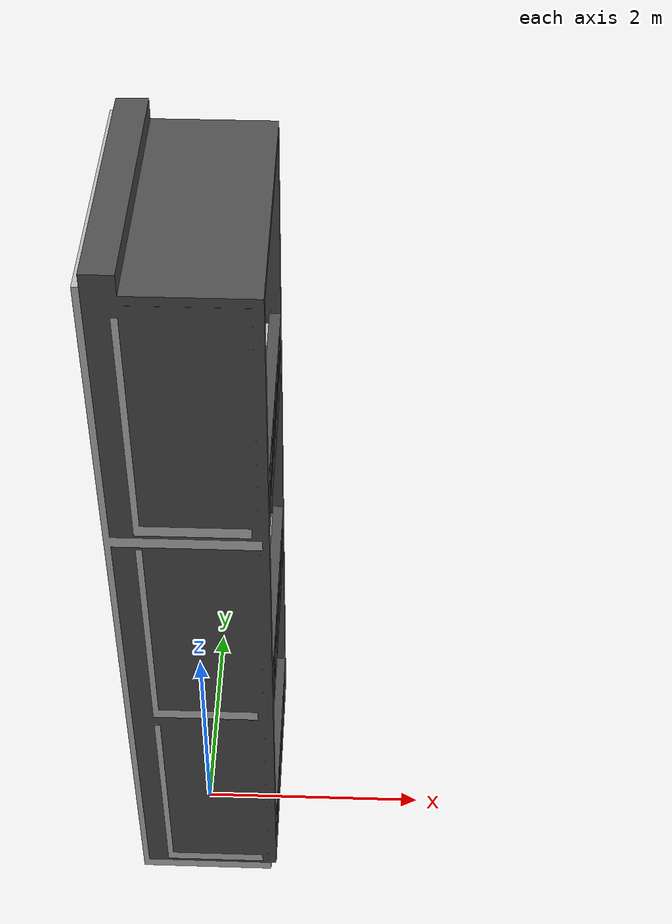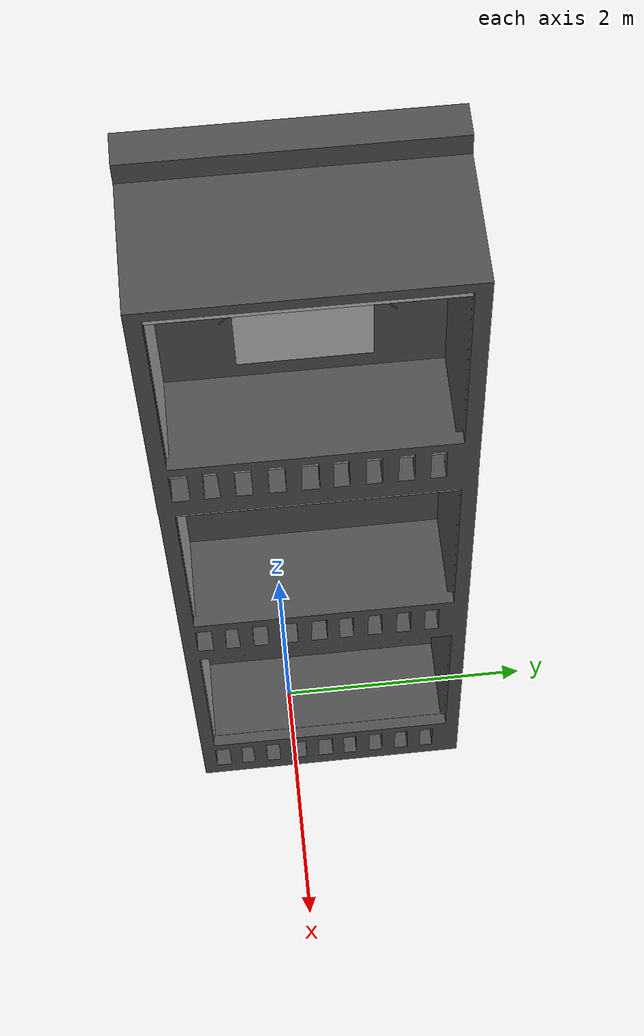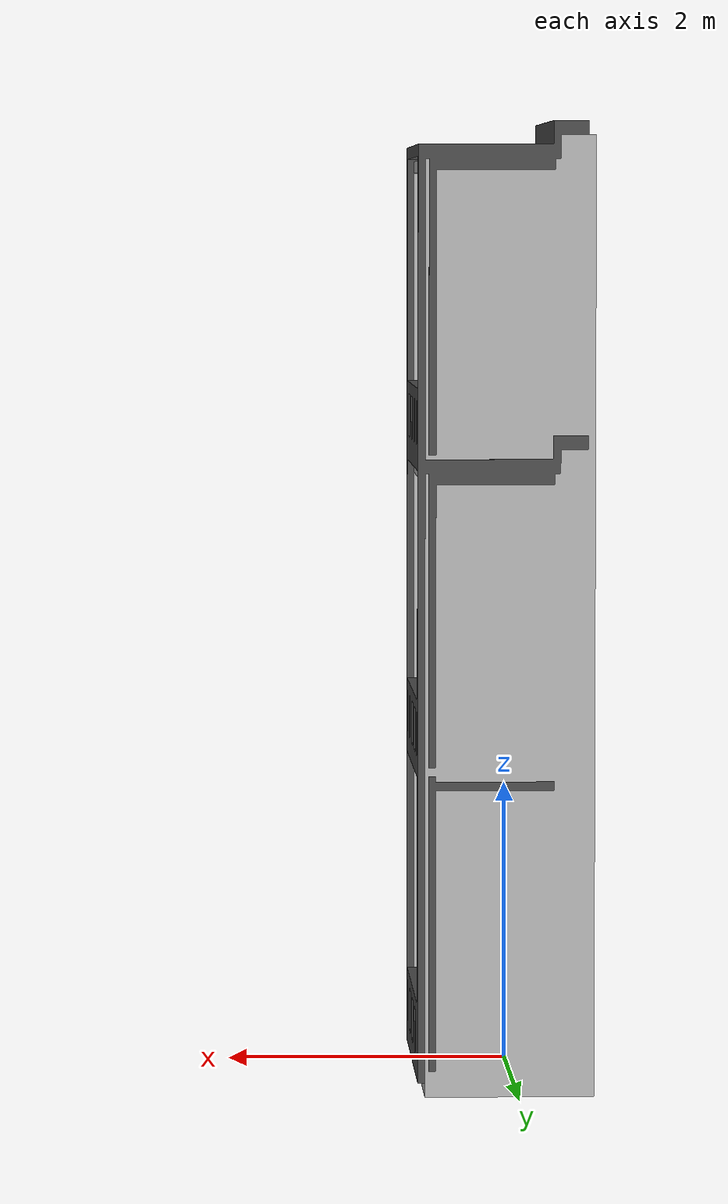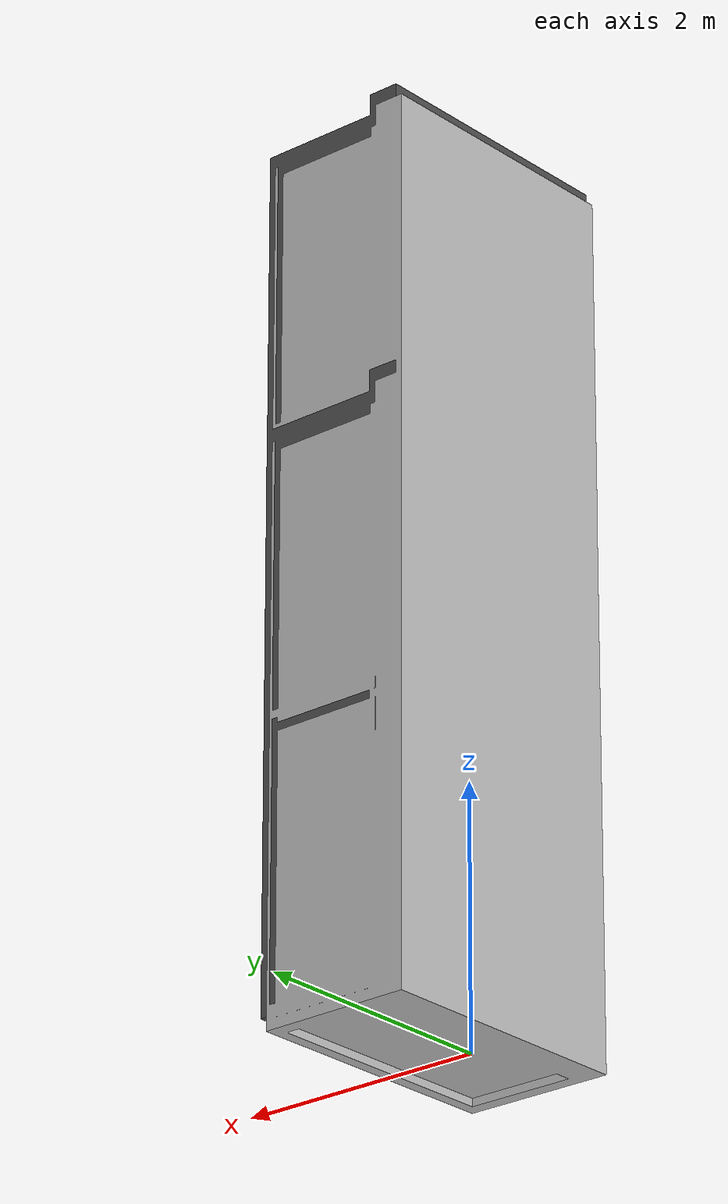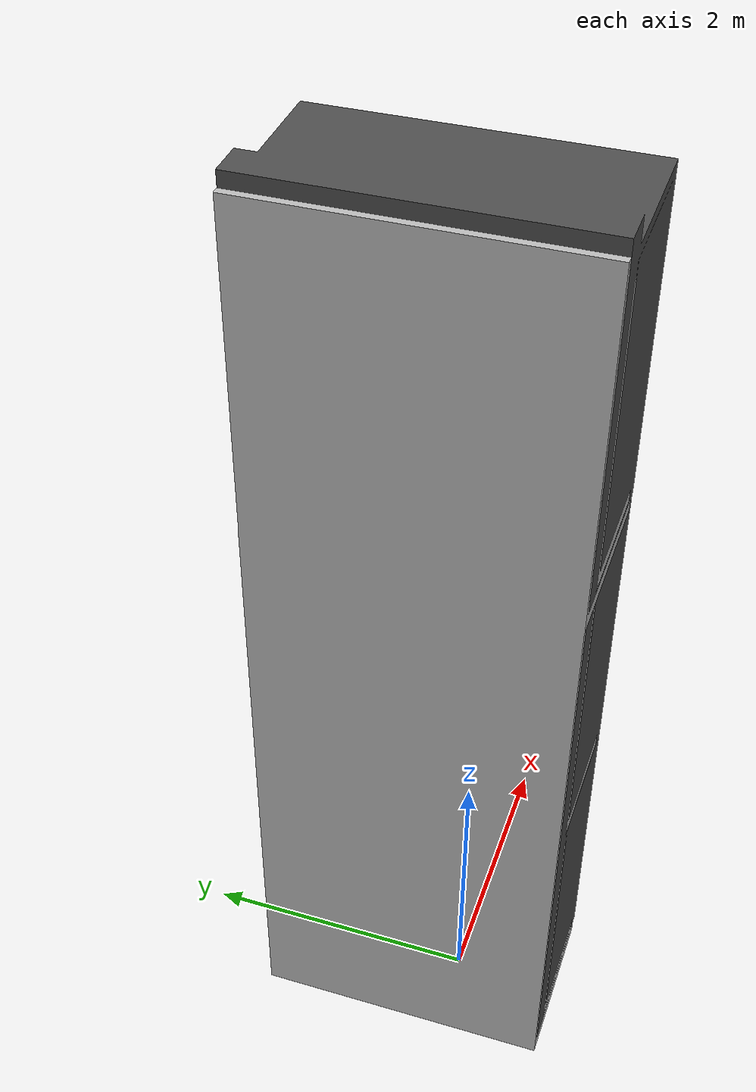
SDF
<?xml version="1.0" ?>
<sdf version="1.5">
  <model name="Apartment">
    <static>true</static>
    <link name="link">
      <collision name="collision">
        <geometry>
          <box>
            <size>1.5 2 6.8</size>
          </box>
        </geometry>
      </collision>
      <visual name="visual">
        <pose>0 0 2.2 1.57 0 0</pose>
        <geometry>
          <mesh>
            <scale>0.3 0.3 0.3</scale>
            <uri>model://Apartment/meshes/Apartment.stl</uri>
          </mesh>
        </geometry>
      </visual>
    </link>
    <link name="link2">
      <visual name="visual2">
        <pose>0.05 0 2.3 1.57 0 0</pose>
        <geometry>
          <mesh>
            <scale>0.3 0.3 0.3</scale>
            <uri>model://Apartment/meshes/Apartment.stl</uri>
          </mesh>
        </geometry>
        <material>
          <script>
            <name>Gazebo/DarkGrey</name>
          </script>
        </material>
      </visual>
    </link>
    <include>
      <pose>0.01 0.3 5.5 0 1.57 0</pose>
      <uri>model://box_target_green</uri>
    </include>
  </model>
</sdf>

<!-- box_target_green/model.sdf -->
<sdf version="1.6">
  <model name="box_target_green">
    <pose>0 0 1 0 1.57 0</pose>
    <static>true</static>
    <link name="link">

      <visual name="visual">
        <geometry>
          <mesh>
            <scale>0.15 0.15 0.01</scale>
            <uri>model://box_target_green/meshes/mesh.dae</uri>
          </mesh>
        </geometry>
      </visual>
    </link>
  </model>
</sdf>
